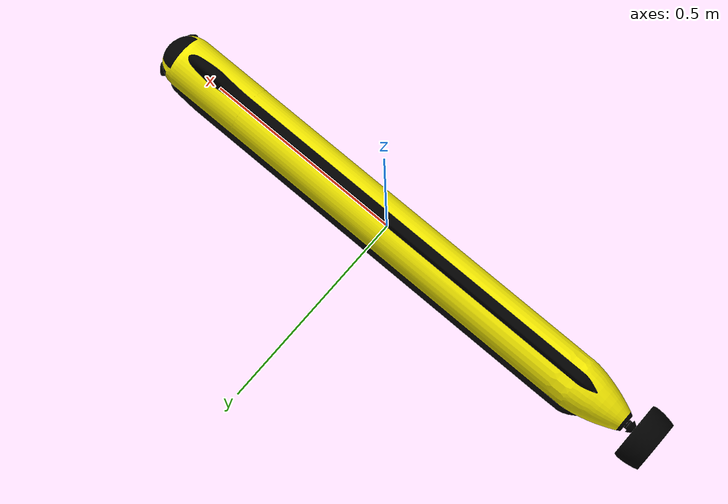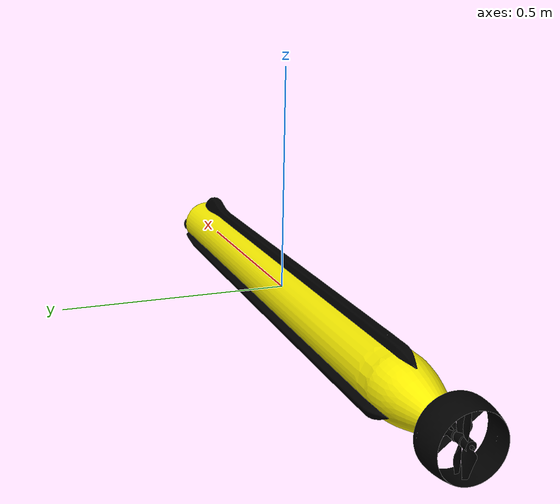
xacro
<?xml version="1.0"?>

<robot name="sam" xmlns:xacro="http://www.ros.org/wiki/xacro" >
  <xacro:arg name="robot_namespace" default="sam"/>
  <xacro:include filename="$(find sam_description)/urdf/sam_auv.urdf.xacro"/>
  <xacro:sam_auv
    robot_namespace="$(arg robot_namespace)">
  </xacro:sam_auv>
    <!-- debug="$(arg debug)" -->

</robot>

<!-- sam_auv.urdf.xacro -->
<robot name="sam" xmlns:xacro="http://www.ros.org/wiki/xacro">

  <!-- Meshes. -->
  <xacro:property name="visual_mesh_file" value="file://$(find sam_description)/mesh/SAM_HULL.dae"/>
  <xacro:property name="prop_nozzle" value="file://$(find sam_description)/mesh/SAM_NOZZLE.dae"/>
  <xacro:property name="front_prop" value="file://$(find sam_description)/mesh/SAM_FRONTPROP.dae"/>
  <xacro:property name="back_prop" value="file://$(find sam_description)/mesh/SAM_BACKPROP.dae"/>

  <xacro:macro name="sam_auv" params="robot_namespace">

  </xacro:macro>
    <xacro:sam_auv robot_namespace="sam"/>

  <!-- Links. -->
  <link name="$(arg robot_namespace)/base_link">
    <visual>
      <origin xyz="-0.677 0 0" rpy="0 0 0"/>
      <geometry>
        <mesh filename="${visual_mesh_file}" scale="1 1 1"/>
      </geometry>
    </visual>
  </link>

  <link name="$(arg robot_namespace)/thruster_link">
    <visual>
      <origin xyz="0 0 0" rpy="0 0 0"/>
      <geometry>
        <mesh filename="${prop_nozzle}" scale="1 1 1"/>
      </geometry>
    </visual>
  </link>

  <link name="$(arg robot_namespace)/front_prop_link">
    <visual>
      <origin xyz="0 0 0" rpy="0 0 0"/>
      <geometry>
        <mesh filename="${front_prop}" scale="1 1 1"/>
      </geometry>
    </visual>
  </link>

  <link name="$(arg robot_namespace)/back_prop_link">
    <visual>
      <origin xyz="0 0 0" rpy="0 0 0"/>
      <geometry>
        <mesh filename="${back_prop}" scale="1 1 1"/>
      </geometry>
    </visual>
  </link>

  <link name="$(arg robot_namespace)/thruster_yaw_link"/>
  <link name="$(arg robot_namespace)/battery_link"/>
  <link name="$(arg robot_namespace)/tcg1_link"/>
  <link name="$(arg robot_namespace)/tcg2_link"/>
  <link name="$(arg robot_namespace)/pressure_link"/>
  <link name="$(arg robot_namespace)/dvl_link"/>
  <link name="$(arg robot_namespace)/sidescan_link"/>
  <link name="$(arg robot_namespace)/imu_link"/>
  <link name="$(arg robot_namespace)/sbg_link"/>
  <link name="$(arg robot_namespace)/gps_link"/>
  <link name="$(arg robot_namespace)/uw_gps_link"/>
  <link name="$(arg robot_namespace)/camera_down_link"/>
  <link name="$(arg robot_namespace)/camera_front_right_link"/>
  <link name="$(arg robot_namespace)/camera_front_left_link"/>
  <link name="$(arg robot_namespace)/camera_front_link"/>

  <joint name="thruster_yaw_joint" type="fixed">
    <parent link="$(arg robot_namespace)/base_link"/>
    <child link="$(arg robot_namespace)/thruster_yaw_link"/>
    <origin rpy="0.0 0.0 0.0" xyz="-0.677 0.0 0.0"/>
    <axis xyz="0 0 1"/>
    <limit lower="-0.2" upper="0.2" velocity="0.2" effort="1.0"/>
  </joint>

  <joint name="thruster_pitch_joint" type="fixed">
    <parent link="$(arg robot_namespace)/thruster_yaw_link"/>
    <child link="$(arg robot_namespace)/thruster_link"/>
    <origin rpy="0.0 0.0 0.0" xyz="0.0 0.0 0.0"/>
    <axis xyz="0 1 0"/>
    <limit lower="-0.2" upper="0.2" velocity="0.2" effort="1.0"/>
  </joint>

  <joint name="front_prop_joint" type="fixed">
    <parent link="$(arg robot_namespace)/base_link"/>
    <child link="$(arg robot_namespace)/front_prop_link"/>
    <origin rpy="0.0 0.0 0.0" xyz="-0.733 0 0"/>
    <axis xyz="1 0 0"/>
  </joint>

  <joint name="back_prop_joint" type="fixed">
    <parent link="$(arg robot_namespace)/base_link"/>
    <child link="$(arg robot_namespace)/back_prop_link"/>
    <origin rpy="0.0 0.0 0.0" xyz="-0.751 0 0"/>
    <axis xyz="1 0 0"/>
  </joint>

  <joint name="pressure_joint" type="fixed">
    <parent link="$(arg robot_namespace)/base_link"/>
    <child link="$(arg robot_namespace)/pressure_link"/>
    <origin rpy="0.0 0.0 0.0" xyz="-0.503 0.025 0.057"/>
  </joint>

  <joint name="dvl_joint" type="fixed">
    <parent link="$(arg robot_namespace)/base_link"/>
    <child link="$(arg robot_namespace)/dvl_link"/>
    <origin rpy="0.0 0.0 0.0" xyz="0.573 0.0 -0.063"/>
  </joint>

  <!--Sidescan acoustic center, i.e. intersection between both sidescan centers.-->
  <joint name="sidescan_joint" type="fixed">
    <parent link="$(arg robot_namespace)/base_link"/>
    <child link="$(arg robot_namespace)/sidescan_link"/>
    <origin rpy="0.0 0.0 0.0" xyz="-0.043 0.0 0.0"/>
  </joint>

  <joint name="imu_joint" type="fixed">
    <parent link="$(arg robot_namespace)/base_link"/>
    <child link="$(arg robot_namespace)/imu_link"/>
    <origin rpy="0.0 0.0 0.0" xyz="0.24 0.0 -0.036"/>
  </joint>

  <joint name="sbg_joint" type="fixed">
    <parent link="$(arg robot_namespace)/base_link"/>
    <child link="$(arg robot_namespace)/sbg_link"/>
    <origin rpy="0.0 0.0 0.0" xyz="0.46 0.0 0.002"/>
  </joint>

  <joint name="gps_joint" type="fixed">
    <parent link="$(arg robot_namespace)/base_link"/>
    <child link="$(arg robot_namespace)/gps_link"/>
    <origin rpy="0.0 0.0 0.0" xyz="0.528 0.0 0.071"/>
  </joint>

  <joint name="uw_gps_joint" type="fixed">
    <parent link="$(arg robot_namespace)/base_link"/>
    <child link="$(arg robot_namespace)/uw_gps_link"/>
    <origin rpy="0.0 0.0 0.0" xyz="-0.402 0.0 0.078"/>
  </joint>

  <!-- Waterlink Nosecone Camera Positions -->
  <joint name="camera_front_joint" type="fixed">
    <parent link="$(arg robot_namespace)/base_link"/>
    <child link="$(arg robot_namespace)/camera_front_link"/>
    <origin rpy="-1.5707 0.0 -1.5707" xyz="0.647 0.0 0.0"/>
  </joint>

  <joint name="camera_down_joint" type="fixed">
    <parent link="$(arg robot_namespace)/base_link"/>
    <child link="$(arg robot_namespace)/camera_down_link"/>
    <origin rpy="3.1416 0.0 -1.5707" xyz="0.5905 0.0 -0.058"/>
  </joint>

  <joint name="camera_front_left_joint" type="fixed">
    <parent link="$(arg robot_namespace)/base_link"/>
    <child link="$(arg robot_namespace)/camera_front_left_link"/>
    <!--origin rpy="1.3 3.1416 2.3416" xyz="0.636 0.050 -0.007"/-->
    <origin rpy="1.3 3.1416 2.3416" xyz="0.636 0.050 -0.007"/>
  </joint>

  <joint name="camera_front_right_joint" type="fixed">
    <parent link="$(arg robot_namespace)/base_link"/>
    <child link="$(arg robot_namespace)/camera_front_right_link"/>
    <origin rpy="1.3 3.1416 0.8" xyz="0.636 -0.050 -0.007"/>
  </joint>

  <joint name="lcg_joint" type="prismatic">
    <parent link="$(arg robot_namespace)/base_link"/>
    <child link="$(arg robot_namespace)/battery_link"/>
    <origin rpy="0.0 0.0 0.0" xyz="0.083 0.0 0.0"/>
    <axis xyz="1 0 0"/>
    <limit lower="-0.01" upper="0.01" velocity="0.2" effort="1.0"/>
  </joint>

  <joint name="tcg_joint1" type="revolute">
    <parent link="$(arg robot_namespace)/base_link"/>
    <child link="$(arg robot_namespace)/tcg1_link"/>
    <origin rpy="0.0 0.0 0.0" xyz="-0.095 0.0 0.0"/>
    <axis xyz="1 0 0"/>
    <limit lower="-1.6" upper="1.6" velocity="0.2" effort="1.0"/>
  </joint>

  <joint name="tcg_joint2" type="revolute">
    <parent link="$(arg robot_namespace)/base_link"/>
    <child link="$(arg robot_namespace)/tcg2_link"/>
    <origin rpy="0.0 0.0 0.0" xyz="-0.125 0.0 0.0"/>
    <axis xyz="1 0 0"/>
    <limit lower="-1.6" upper="1.6" velocity="0.2" effort="1.0"/>
  </joint>

</robot>
